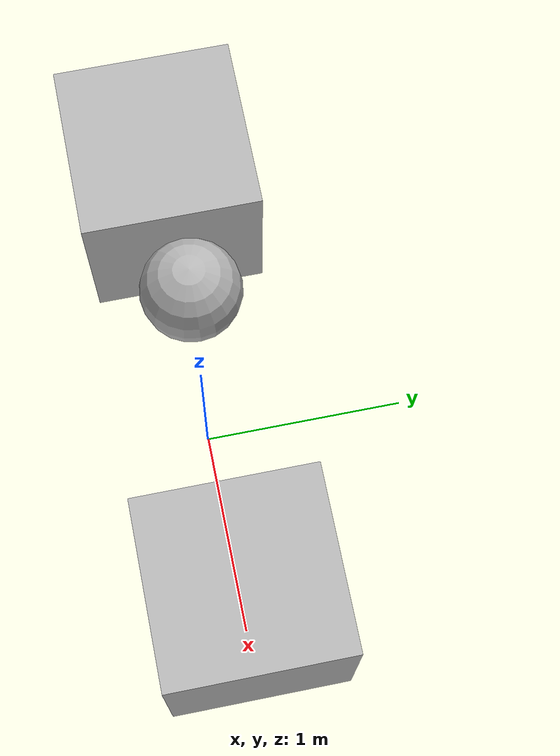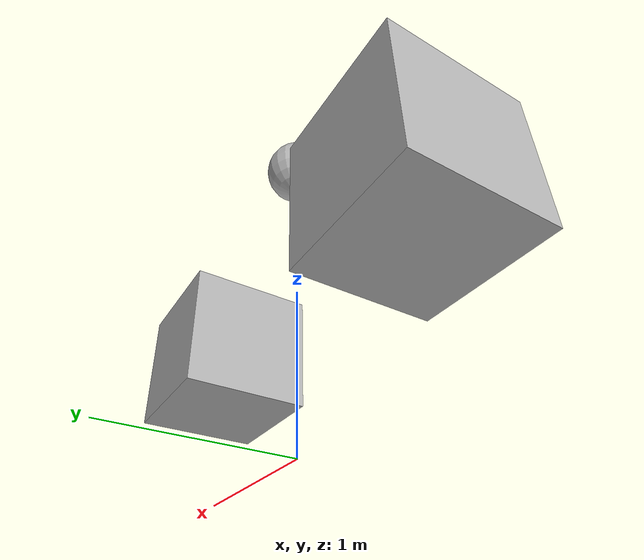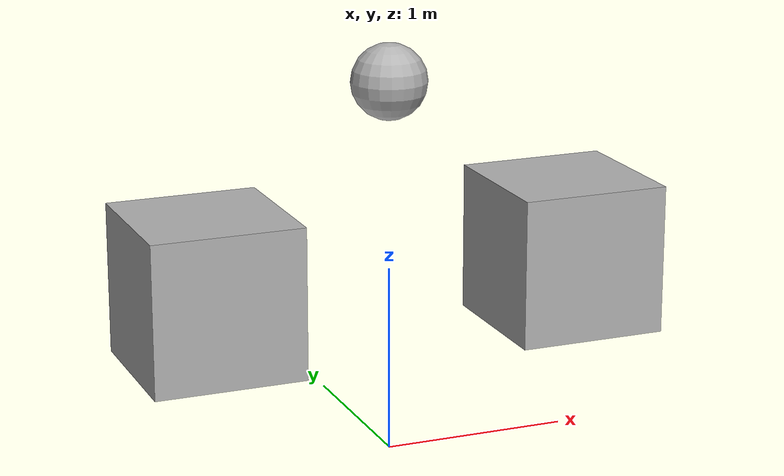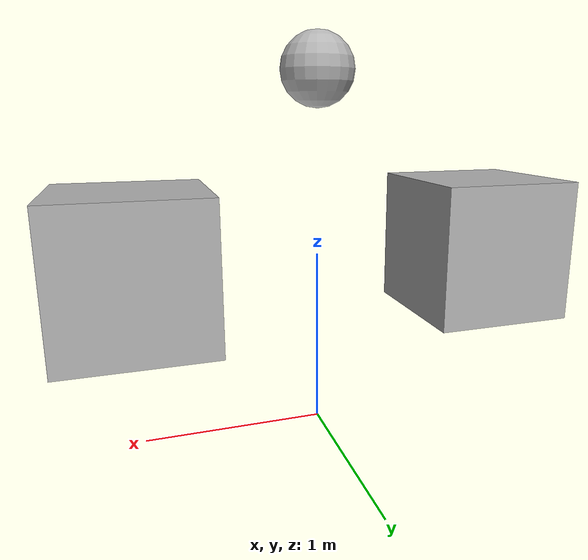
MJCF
<mujoco>
  <option gravity="0 0 -9.81" />
  <worldbody>
    <light diffuse="0.5 0.5 0.5" pos="0 0 5" dir="0 0 -1" />
    <body name="object_4" pos="0 0 -10">
      <geom type="plane" size="50 50 0.1" rgba="0.7 0.7 0.7 1" friction="1 1 1" />
    </body>
    <body name="object_3" pos="0 0 2">
      <geom type="sphere" size="0.2" rgba="0.7 0.7 0.7 1" />
    </body>
    <body name="object_1" pos="-1 0 1">
      <geom type="box" size="0.4 0.4 0.4" mass="5" rgba="0.7 0.7 0.7 1" />
      <joint type="free" name="object_1_joint" />
    </body>
    <body name="object_2" pos="1 0 1">
      <geom type="box" size="0.4 0.4 0.4" mass="2" rgba="0.7 0.7 0.7 1" />
      <joint type="free" name="object_2_joint" />
    </body>
  </worldbody>
<joint name="joint_object_1_object_2" type="revolute" body1="object_1" body2="object_2" /></mujoco>
